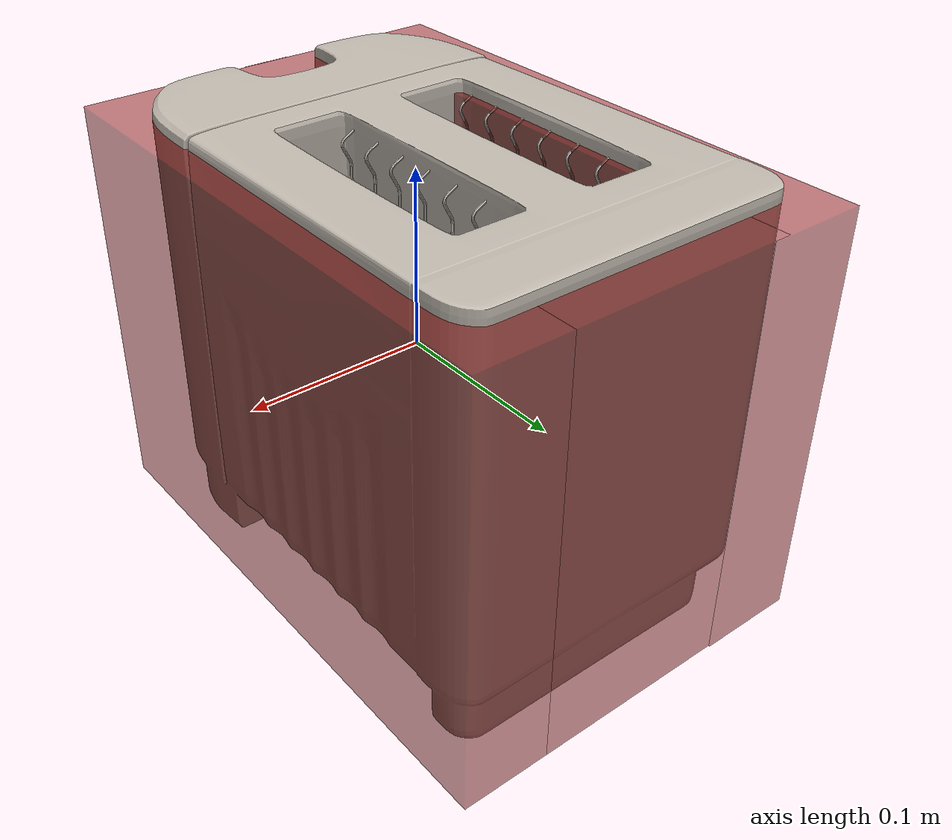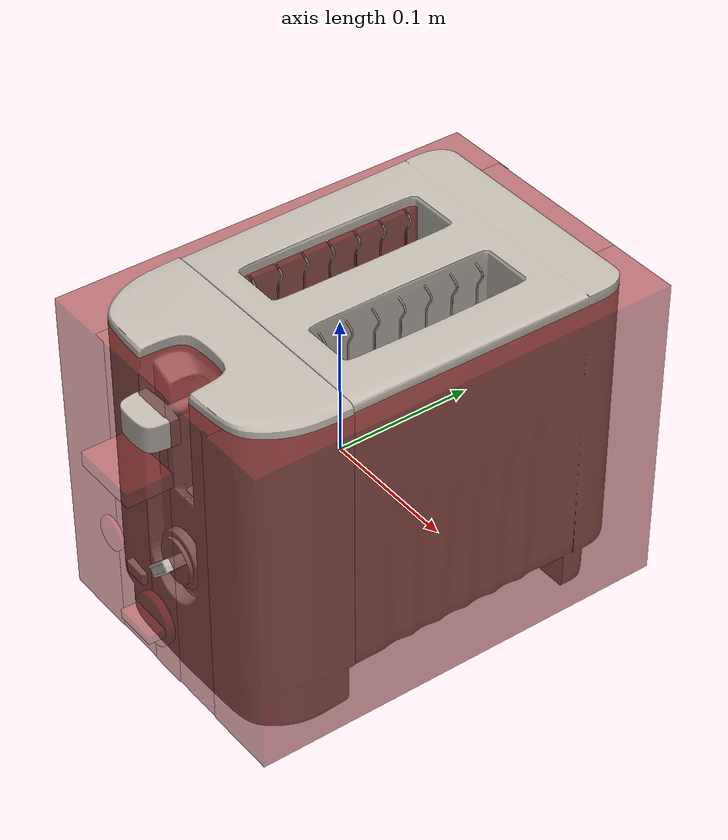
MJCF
<?xml version='1.0' encoding='UTF-8'?>
<mujoco model="model">
  <option timestep="0.002" gravity="0.0 0.0 -9.81"/>
  <compiler angle="radian"/>
  <asset>
    <mesh file="visuals/button_cancel.obj" name="button_cancel_vis"/>
    <mesh file="visuals/knob_doneness.obj" name="knob_doneness_vis"/>
    <mesh file="visuals/lever.obj" name="lever_vis"/>
    <mesh file="visuals/Body001.obj" name="Body001_vis"/>
    <mesh file="visuals/Body002.obj" name="Body002_vis"/>
    <texture file="visuals/T_BC001.png" name="Body001_material" type="2d"/>
    <material name="Body001_material" rgba="1 1 1 1.0" texture="Body001_material" shininess="0.141421377658844" specular="1"/>
    <texture file="visuals/T_BC001.png" name="button_cancel_material" type="2d"/>
    <material name="button_cancel_material" rgba="1 1 1 1.0" texture="button_cancel_material" shininess="0.141421377658844" specular="1"/>
    <texture file="visuals/T_BC001.png" name="knob_doneness_material" type="2d"/>
    <material name="knob_doneness_material" rgba="1 1 1 1.0" texture="knob_doneness_material" shininess="0.141421377658844" specular="1"/>
    <texture file="visuals/T_BC001.png" name="lever_material" type="2d"/>
    <material name="lever_material" rgba="1 1 1 1.0" texture="lever_material" shininess="0.141421377658844" specular="1"/>
    <texture file="visuals/T_BC001.png" name="Body002_material" type="2d"/>
    <material name="Body002_material" rgba="1 1 1 1.0" texture="Body002_material" shininess="0.141421377658844" specular="1"/>
  </asset>
  <default>
    <default class="visual">
      <geom conaffinity="0" contype="0" group="1" type="mesh"/>
    </default>
    <default class="collision_1">
      <geom group="0" rgba="0.5 0 0 0.5" solref="0.004 1" solimp="0.998 0.998 0.001"/>
    </default>
    <default class="collision_2">
      <geom group="0" rgba="0.5 0 0 0.5" solref="0.004 1" solimp="0.998 0.998 0.001"/>
    </default>
    <default class="collision_3">
      <geom group="0" rgba="0.5 0 0 0.5" solref="0.004 1" solimp="0.998 0.998 0.001"/>
    </default>
    <default class="collision_4">
      <geom group="0" rgba="0.5 0 0 0.5" solref="0.004 1" solimp="0.998 0.998 0.001"/>
    </default>
    <default class="collision_5">
      <geom group="0" rgba="0.5 0 0 0.5" solref="0.004 1" solimp="0.998 0.998 0.001"/>
    </default>
    <default class="spawn">
      <geom group="0" rgba="1 1 1 0.5" contype="0" conaffinity="0"/>
      <site group="0" rgba="1 1 1 0.5"/>
    </default>
    <default class="region">
      <geom group="1" conaffinity="0" contype="0" rgba="0 1 0 0" mass="0"/>
    </default>
  </default>
  <worldbody>
    <body>
      <body name="object">
        <geom mesh="Body001_vis" type="mesh" solimp="0.998 0.998 0.001" solref="0.001 1" friction="0.95 0.3 0.1" class="visual" material="Body001_material"/>
        <geom type="box" pos="-0.07971741 0.01870797 -0.00046351" size="0.027198046445846558 0.1555771380662918 0.1152702197432518" quat="1.0 0.0 0.0 0.0" class="collision_1"/>
        <geom type="box" pos="-0.00003752 0.01835757 -0.00046351" size="0.013539373874664307 0.15522673726081848 0.115270234644413" quat="1.0 0.0 0.0 0.0" class="collision_1"/>
        <geom type="box" pos="0.07976037 0.01835758 -0.00046351" size="0.0269173514097929 0.15522678196430206 0.11527024954557419" quat="1.0 0.0 0.0 0.0" class="collision_1"/>
        <geom type="box" pos="-0.00170945 0.13907446 -0.00046351" size="0.06006552278995514 0.03451007977128029 0.11527026444673538" quat="1.0 0.0 0.0 0.0" class="collision_1"/>
        <geom type="box" pos="-0.00170944 -0.10368757 -0.00046351" size="0.060065530240535736 0.03259871155023575 0.11527027934789658" quat="1.0 0.0 0.0 0.0" class="collision_1"/>
        <geom type="box" pos="-0.00170945 0.01558479 -0.07673292" size="0.06006556749343872 0.09493272006511688 0.039000920951366425" quat="1.0 0.0 0.0 0.0" class="collision_1"/>
        <body name="button_cancel">
          <joint axis="0.0 1.0 0.0" pos="-0.05119399 -0.13991499 -0.03358699" limited="true" name="button_cancel_joint" range="0.0 0.002" type="slide" damping="1" frictionloss="1" armature=".01" stiffness="4" springref="-1"/>
          <geom mesh="button_cancel_vis" type="mesh" solimp="0.998 0.998 0.001" solref="0.001 1" friction="0.95 0.3 0.1" class="visual" material="button_cancel_material"/>
          <geom class="collision_2" type="cylinder" pos="-0.05121754 -0.14088061 -0.03365921" size="0.012138999998569489 0.001330736791715026" quat="0.5 -0.5 0.4999999701976776 0.5" name="button_cancel_main"/>
        </body>
        <body name="knob_doneness">
          <joint axis="0.0 1.0 0.0" pos="0.00049300 -0.14775851 -0.06597599" limited="true" name="knob_doneness_joint" range="0.0 4.101523742186674" type="hinge" damping="0.05" armature="1" frictionloss="0.75"/>
          <geom mesh="knob_doneness_vis" type="mesh" solimp="0.998 0.998 0.001" solref="0.001 1" friction="0.95 0.3 0.1" class="visual" material="knob_doneness_material"/>
          <geom type="cylinder" pos="0.00057541 -0.14427564 -0.06606473" size="0.018506541848182678 0.002670976798981428" quat="0.5 -0.5 0.4999999701976776 0.5" class="collision_3" friction="100 0.5 0.01"/>
          <geom class="collision_3" type="box" pos="0.00028527 -0.15000032 -0.06567749" size="0.015855832025408745 0.009276553057134151 0.0031618941575288773" quat="1.0 0.0 0.0 0.0" name="knob_doneness_main" friction="100 0.5 0.01"/>
        </body>
        <body name="lever">
          <joint axis="0.0 0.0 -1.0" pos="0.00042551 -0.15705451 0.05841528" limited="true" name="lever_joint" range="0.0 0.06" type="slide" damping="1" frictionloss="1" armature=".1" stiffness="2.9" springref="-0.5"/>
          <geom class="region" name="reg_slotL" type="box" pos="-0.03213541 0.017429855 0.11635581" size="0.01555186 0.08411996499999999 0.07600007"/>
          <geom class="region" name="reg_slotR" type="box" pos="0.033211069999999995 0.017429855 0.11635581" size="0.01494896 0.08411996499999999 0.07600007"/>
          <geom mesh="lever_vis" type="mesh" solimp="0.998 0.998 0.001" solref="0.001 1" friction="0.95 0.3 0.1" class="visual" material="lever_material"/>
          <geom class="collision_4" type="box" pos="0.00050491 -0.15690675 0.06129082" size="0.0247892327606678 0.016182975843548775 0.005303103011101484" quat="1.0 0.0 0.0 0.0" name="lever_handle"/>
          <geom class="collision_4" type="box" pos="-0.03321323 0.01806196 0.03637848" size="0.015000076033174992 0.08487149327993393 0.0005246942164376378" quat="1.0 0.0 0.0 0.0" name="slotL_floor"/>
          <geom class="collision_4" type="box" pos="0.03304963 0.01806197 0.03637848" size="0.015000076033174992 0.08487150818109512 0.0005246942746452987" quat="1.0 0.0 0.0 0.0" name="slotR_floor"/>
        </body>
        <body name="Body002">
          <geom mesh="Body002_vis" type="mesh" solimp="0.998 0.998 0.001" solref="0.001 1" friction="0.95 0.3 0.1" class="visual" material="Body002_material"/>
        </body>
        <geom class="region" name="reg_main" type="box" pos="0.0004680050000000005 0.018432704999999994 0.0" size="0.107447025 0.158327295 0.1169755"/>
      </body>
    </body>
  </worldbody>
  <actuator>
    <motor name="button_cancel_joint_actuator" joint="button_cancel_joint" gear="0.5"/>
    <motor name="knob_doneness_joint_actuator" joint="knob_doneness_joint" gear="10"/>
    <motor name="lever_joint_actuator" joint="lever_joint" gear="2"/>
  </actuator>
</mujoco>
